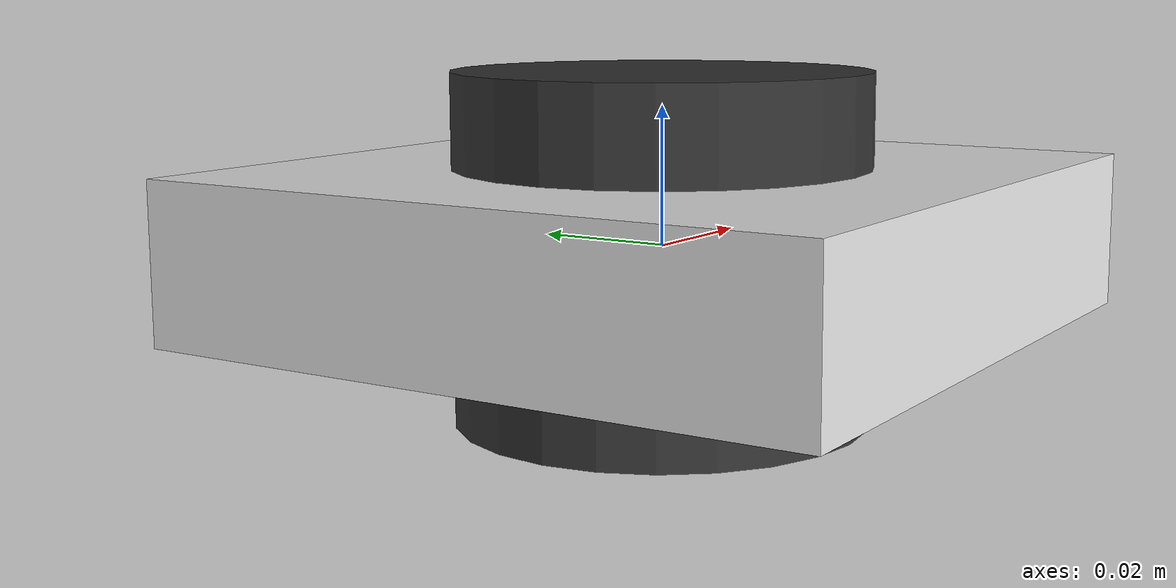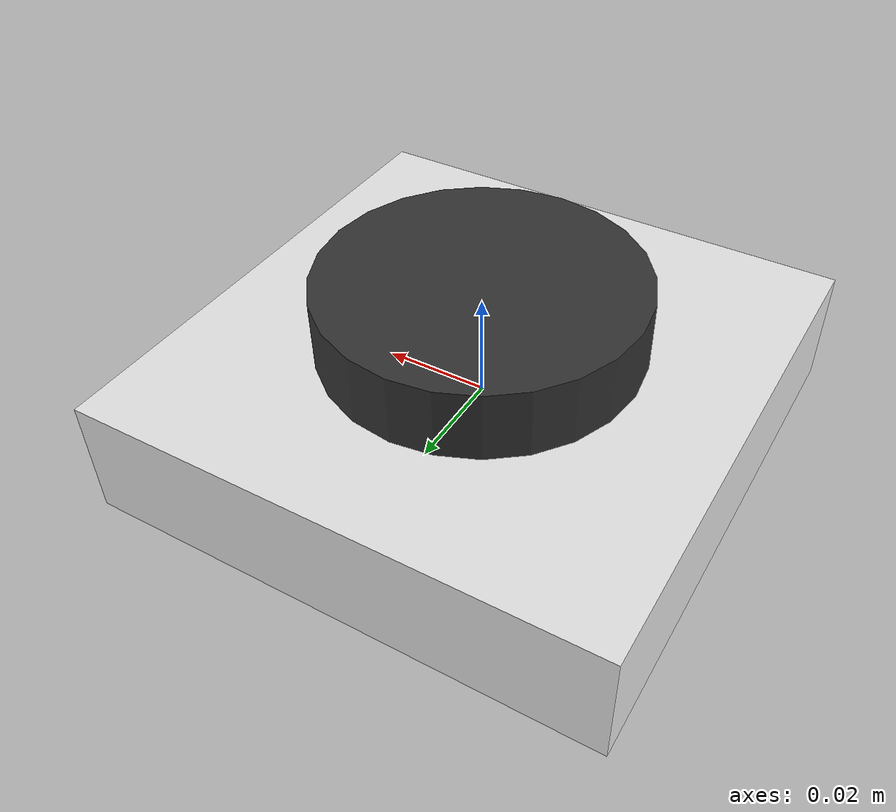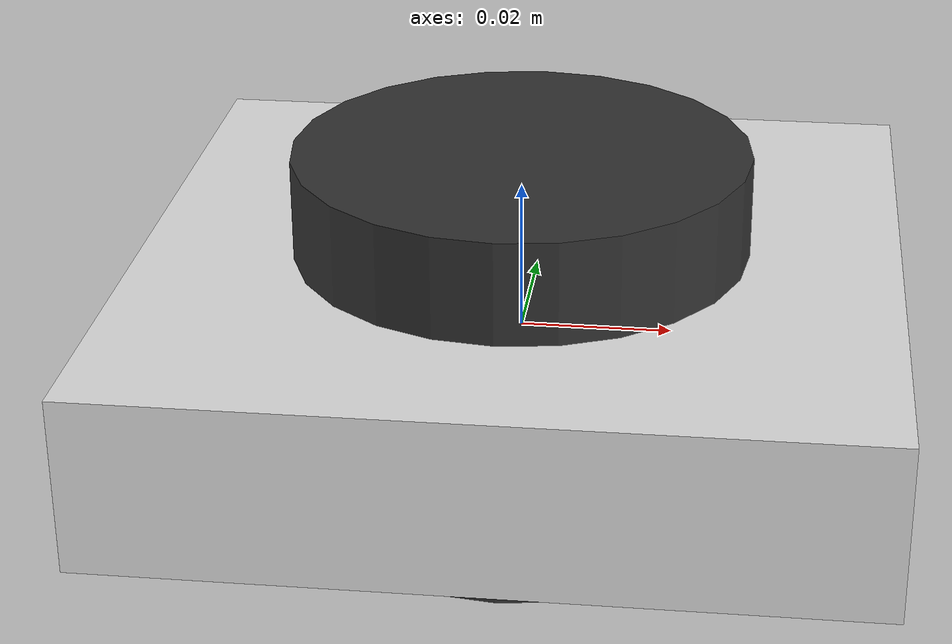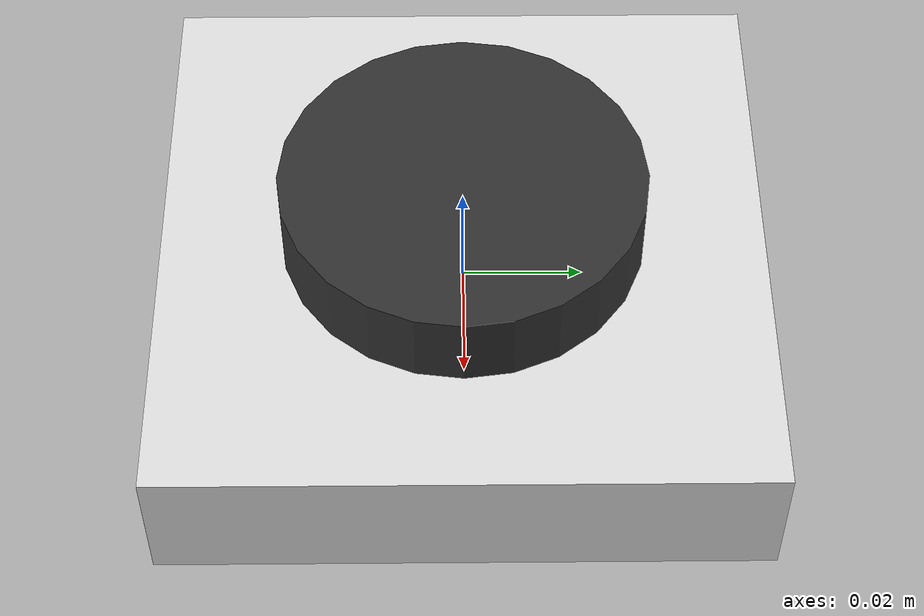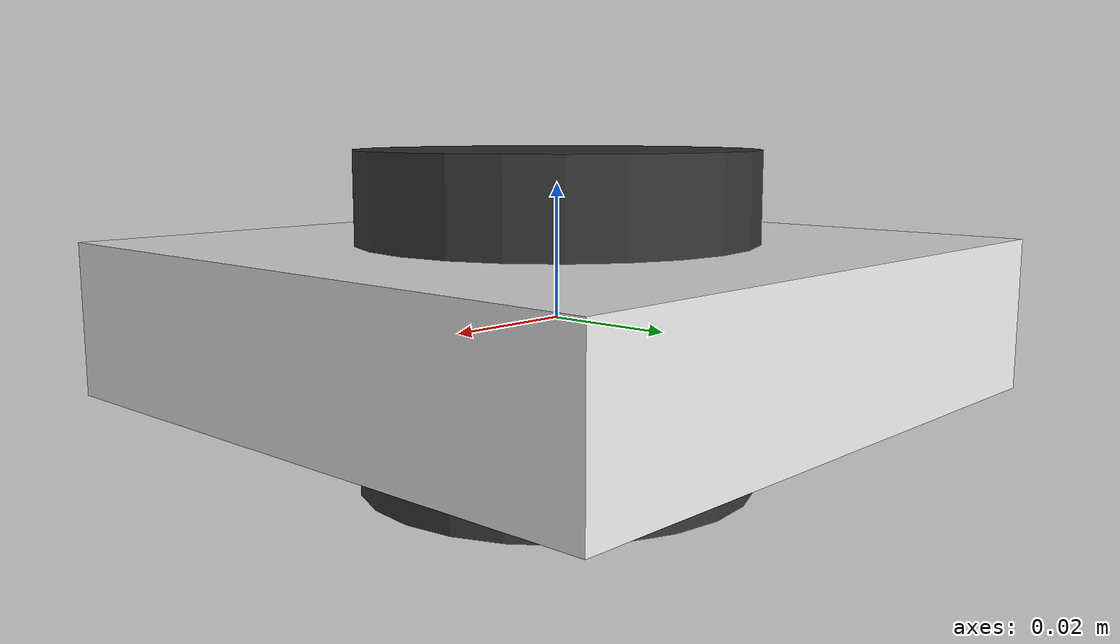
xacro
<?xml version="1.0"?>
<!--
 Copyright (c) Microsoft Corporation. All rights reserved.
 Licensed under the MIT License. Blah
 -->
<robot name="azure-kinect" xmlns:xacro="http://www.ros.org/wiki/xacro">
  <xacro:arg name="tf_prefix" default=""/>
  <material name="black">
    <color rgba="0. 0. 0. 1" />
  </material>
  <material name="dark_grey">
    <color rgba="0.1 0.1 0.1 1" />
  </material>
  <material name="grey">
    <color rgba="0.6 0.6 0.6 1" />
 </material>
  <material name="gray">
    <color rgba="0.2 0.2 0.2 1" />
  </material>
  <material name="brightRed">
    <color rgba="1.0 0 0 1.0" />
  </material>
  <material name="white">
    <color rgba="0.9 0.9 0.9 1" />
  </material>
    <material name="orange">
    <color rgba="1.0 0.5 0.2 1" />
  </material>

  <link name="imu_link">
    <visual>
      <origin xyz="0 0 0" />
      <geometry>
        <box size="0.06 0.04 0.02" />
      </geometry>
      <material name="orange" />
    </visual>
  </link>
  <link name="horizontal_laser_link">
    <visual>
      <origin xyz="0 0 0" />
      <geometry>
        <cylinder length="0.05" radius="0.03" />
      </geometry>
      <material name="gray" />
    </visual>
  </link>
  <link name="camera_body">
    <visual>
      <origin xyz="0. 0. 0." />
      <geometry>
        <box size="0.0994 0.0996 0.023" />
      </geometry>
      <material name="white" />
    </visual>
  </link>
  <link name="base_link" />
  <joint name="imu_link_joint" type="fixed">
    <parent link="base_link" />
    <child link="imu_link" />
    <origin rpy="3.1415 0 0" xyz="0 0 0" />
  </joint>
  <joint name="horizontal_laser_link_joint" type="fixed">
    <parent link="base_link" />
    <child link="horizontal_laser_link" />
    <origin rpy="0 0 0.0" xyz="0.0 0.0 0.0" />
  </joint>
  <joint name="base_to_body" type="fixed">
    <parent link="base_link" />
    <child link="camera_body" />
    <origin xyz="0.0 0. 0.0" rpy="0. 0. 0." />
  </joint>

</robot>
